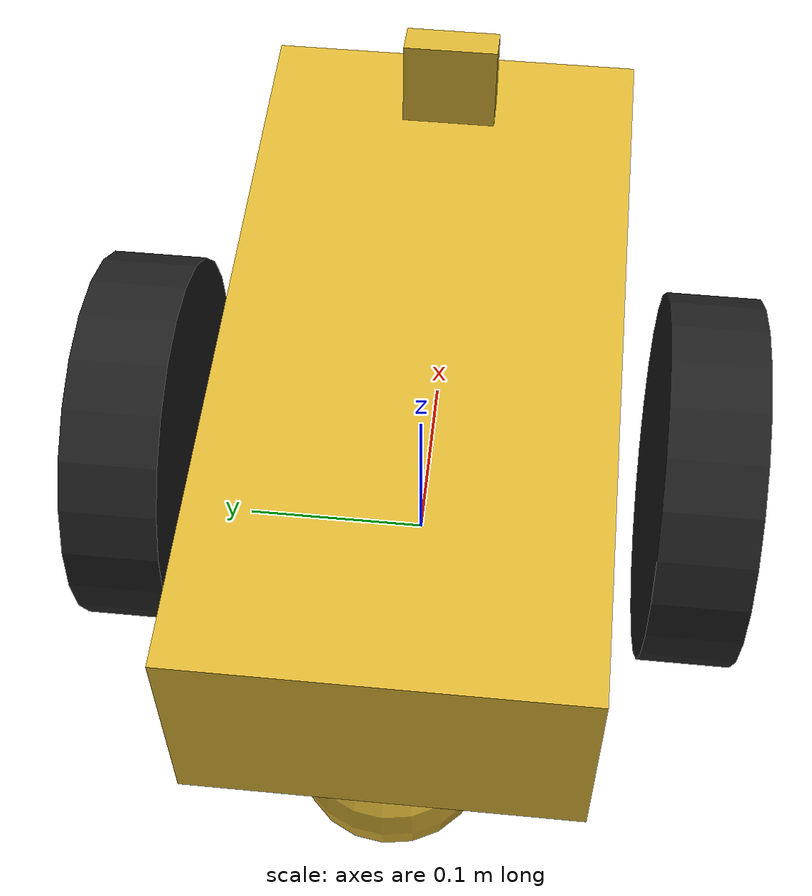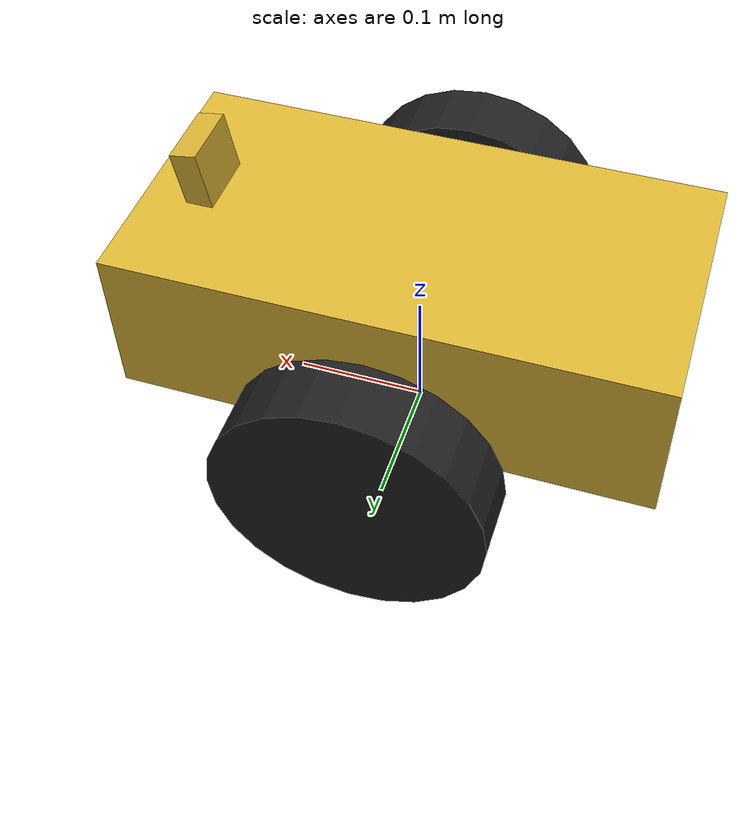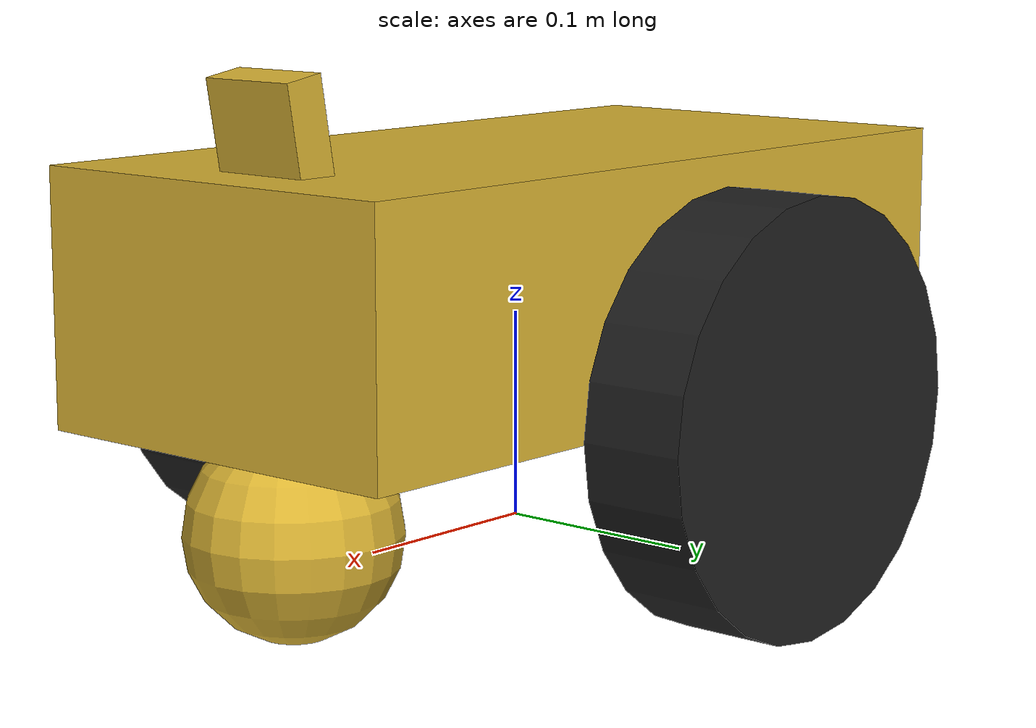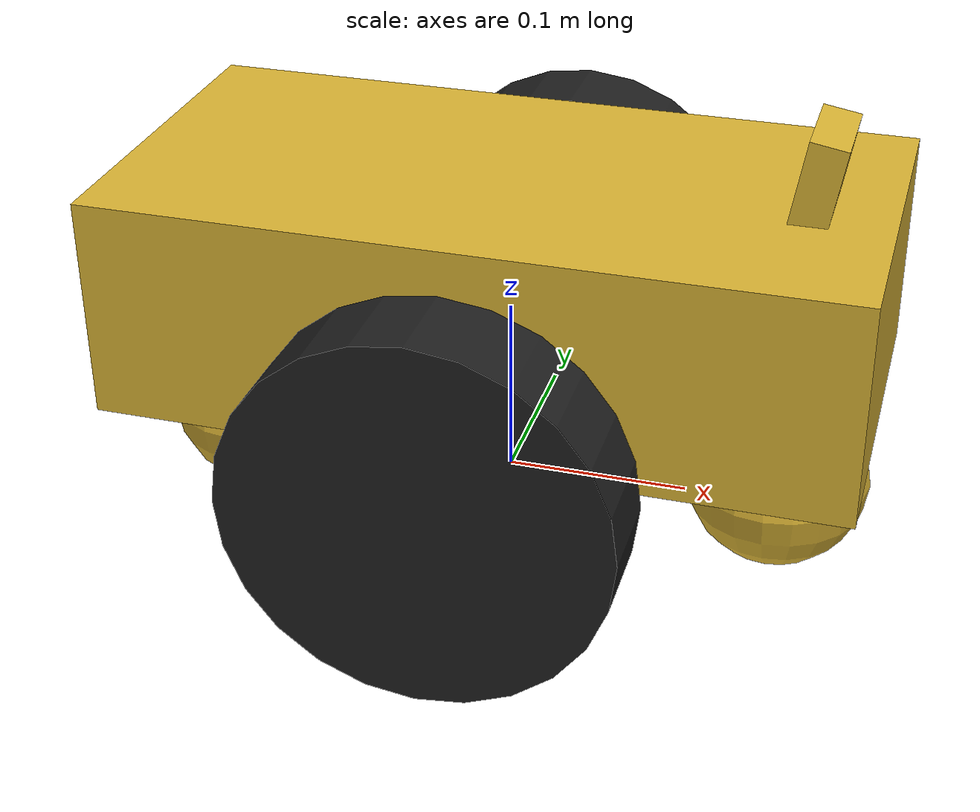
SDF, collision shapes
<?xml version='1.0'?>
<sdf version='1.6'>
  <model name='ugv_bot'>
    <link name='robot_footprint'>
      <pose frame=''>0 0 0 0 -0 0</pose>
      <inertial>
        <pose frame=''>0.00106 0 0.120517 0 -0 0</pose>
        <mass>15.1</mass>
        <inertia>
          <ixx>0.100704</ixx>
          <ixy>0</ixy>
          <ixz>-0.00123974</ixz>
          <iyy>0.103247</iyy>
          <iyz>5.39612e-24</iyz>
          <izz>0.102643</izz>
        </inertia>
      </inertial>
      <velocity_decay/>
      <gravity>1</gravity>
      <velocity_decay/>
      <sensor name='camera' type='camera'>
        <update_rate>30</update_rate>
        <visualize>0</visualize>
        <camera name='head'>
          <horizontal_fov>1.39626</horizontal_fov>
          <image>
            <width>800</width>
            <height>800</height>
            <format>R8G8B8</format>
          </image>
          <clip>
            <near>0.02</near>
            <far>300</far>
          </clip>
        </camera>
        <plugin name='camera_controller' filename='libgazebo_ros_camera.so'>
          <alwaysOn>1</alwaysOn>
          <updateRate>0.0</updateRate>
          <cameraName>camera</cameraName>
          <imageTopicName>/camera/color/image_raw</imageTopicName>
          <cameraInfoTopicName>/camera/color/camera_info</cameraInfoTopicName>
          <frameName>camera_link</frameName>
          <hackBaseline>0.07</hackBaseline>
          <distortionK1>0.0</distortionK1>
          <distortionK2>0.0</distortionK2>
          <distortionK3>0.0</distortionK3>
          <distortionT1>0.0</distortionT1>
          <distortionT2>0.0</distortionT2>
          <robotNamespace>/</robotNamespace>
        </plugin>
        <pose frame=''>0.16 0 0.198 0 -0.17 3.14</pose>
      </sensor>
      <self_collide>0</self_collide>
      <enable_wind>0</enable_wind>
      <kinematic>0</kinematic>
      <visual name='robot_footprint_fixed_joint_lump__chassis_visual_visual'>
        <pose frame=''>0 0 0.12 0 -0 0</pose>
        <geometry>
          <box>
            <size>0.4 0.2 0.12</size>
          </box>
        </geometry>
        <material>
          <script>
            <name>Gazebo/Gold</name>
            <uri>file://media/materials/scripts/gazebo.material</uri>
          </script>
          <shader type='pixel'/>
        </material>
        <transparency>0</transparency>
        <cast_shadows>1</cast_shadows>
      </visual>
      <visual name='robot_footprint_fixed_joint_lump__back_caster_visual_visual_1'>
        <pose frame=''>-0.15 0 0.02 0 -0 0</pose>
        <geometry>
          <sphere>
            <radius>0.05</radius>
          </sphere>
        </geometry>
        <material>
          <shader type='pixel'/>
        </material>
        <transparency>0</transparency>
        <cast_shadows>1</cast_shadows>
      </visual>
      <visual name='robot_footprint_fixed_joint_lump__front_caster_visual_visual_2'>
        <pose frame=''>0.15 0 0.02 0 -0 0</pose>
        <geometry>
          <sphere>
            <radius>0.05</radius>
          </sphere>
        </geometry>
        <material>
          <shader type='pixel'/>
        </material>
        <transparency>0</transparency>
        <cast_shadows>1</cast_shadows>
      </visual>
      <visual name='robot_footprint_fixed_joint_lump__camera_visual_visual_3'>
        <pose frame=''>0.16 0 0.198 0 -0.17 3.14</pose>
        <geometry>
          <mesh>
            <scale>1 1 1</scale>
            <uri>/home/yu/sim_ws/src/E2ES/gazebo/models/ugv_bot/meshes/camera.dae</uri>
          </mesh>
        </geometry>
        <material>
          <script>
            <uri>__default__</uri>
            <name>__default__</name>
          </script>
          <shader type='pixel'/>
        </material>
        <transparency>0</transparency>
        <cast_shadows>1</cast_shadows>
      </visual>
      <collision name='robot_footprint_fixed_joint_lump__collision_collision'>
        <laser_retro>0</laser_retro>
        <max_contacts>10</max_contacts>
        <pose frame=''>0 0 0.12 0 -0 0</pose>
        <geometry>
          <box>
            <size>0.4 0.2 0.12</size>
          </box>
        </geometry>
        <surface>
          <friction>
            <ode>
              <mu>1</mu>
              <mu2>1</mu2>
              <fdir1>0 0 0</fdir1>
              <slip1>0</slip1>
              <slip2>0</slip2>
            </ode>
            <torsional>
              <coefficient>1</coefficient>
              <patch_radius>0</patch_radius>
              <surface_radius>0</surface_radius>
              <use_patch_radius>1</use_patch_radius>
              <ode>
                <slip>0</slip>
              </ode>
            </torsional>
          </friction>
          <bounce>
            <restitution_coefficient>0</restitution_coefficient>
            <threshold>1e+06</threshold>
          </bounce>
          <contact>
            <collide_without_contact>0</collide_without_contact>
            <collide_without_contact_bitmask>1</collide_without_contact_bitmask>
            <collide_bitmask>1</collide_bitmask>
            <ode>
              <soft_cfm>0</soft_cfm>
              <soft_erp>0.2</soft_erp>
              <kp>1e+13</kp>
              <kd>1</kd>
              <max_vel>0.01</max_vel>
              <min_depth>0</min_depth>
            </ode>
            <bullet>
              <split_impulse>1</split_impulse>
              <split_impulse_penetration_threshold>-0.01</split_impulse_penetration_threshold>
              <soft_cfm>0</soft_cfm>
              <soft_erp>0.2</soft_erp>
              <kp>1e+13</kp>
              <kd>1</kd>
            </bullet>
          </contact>
        </surface>
      </collision>
      <collision name='robot_footprint_fixed_joint_lump__back_caster_collision_collision_1'>
        <laser_retro>0</laser_retro>
        <max_contacts>10</max_contacts>
        <pose frame=''>-0.15 0 0.02 0 -0 0</pose>
        <geometry>
          <sphere>
            <radius>0.0499</radius>
          </sphere>
        </geometry>
        <surface>
          <friction>
            <ode>
              <mu>1</mu>
              <mu2>1</mu2>
              <fdir1>0 0 0</fdir1>
              <slip1>0</slip1>
              <slip2>0</slip2>
            </ode>
            <torsional>
              <coefficient>1</coefficient>
              <patch_radius>0</patch_radius>
              <surface_radius>0</surface_radius>
              <use_patch_radius>1</use_patch_radius>
              <ode>
                <slip>0</slip>
              </ode>
            </torsional>
          </friction>
          <bounce>
            <restitution_coefficient>0</restitution_coefficient>
            <threshold>1e+06</threshold>
          </bounce>
          <contact>
            <collide_without_contact>0</collide_without_contact>
            <collide_without_contact_bitmask>1</collide_without_contact_bitmask>
            <collide_bitmask>1</collide_bitmask>
            <ode>
              <soft_cfm>0</soft_cfm>
              <soft_erp>0.2</soft_erp>
              <kp>1e+13</kp>
              <kd>1</kd>
              <max_vel>0.01</max_vel>
              <min_depth>0</min_depth>
            </ode>
            <bullet>
              <split_impulse>1</split_impulse>
              <split_impulse_penetration_threshold>-0.01</split_impulse_penetration_threshold>
              <soft_cfm>0</soft_cfm>
              <soft_erp>0.2</soft_erp>
              <kp>1e+13</kp>
              <kd>1</kd>
            </bullet>
          </contact>
        </surface>
      </collision>
      <collision name='robot_footprint_fixed_joint_lump__front_caster_collision_collision_2'>
        <laser_retro>0</laser_retro>
        <max_contacts>10</max_contacts>
        <pose frame=''>0.15 0 0.02 0 -0 0</pose>
        <geometry>
          <sphere>
            <radius>0.0499</radius>
          </sphere>
        </geometry>
        <surface>
          <friction>
            <ode>
              <mu>1</mu>
              <mu2>1</mu2>
              <fdir1>0 0 0</fdir1>
              <slip1>0</slip1>
              <slip2>0</slip2>
            </ode>
            <torsional>
              <coefficient>1</coefficient>
              <patch_radius>0</patch_radius>
              <surface_radius>0</surface_radius>
              <use_patch_radius>1</use_patch_radius>
              <ode>
                <slip>0</slip>
              </ode>
            </torsional>
          </friction>
          <bounce>
            <restitution_coefficient>0</restitution_coefficient>
            <threshold>1e+06</threshold>
          </bounce>
          <contact>
            <collide_without_contact>0</collide_without_contact>
            <collide_without_contact_bitmask>1</collide_without_contact_bitmask>
            <collide_bitmask>1</collide_bitmask>
            <ode>
              <soft_cfm>0</soft_cfm>
              <soft_erp>0.2</soft_erp>
              <kp>1e+13</kp>
              <kd>1</kd>
              <max_vel>0.01</max_vel>
              <min_depth>0</min_depth>
            </ode>
            <bullet>
              <split_impulse>1</split_impulse>
              <split_impulse_penetration_threshold>-0.01</split_impulse_penetration_threshold>
              <soft_cfm>0</soft_cfm>
              <soft_erp>0.2</soft_erp>
              <kp>1e+13</kp>
              <kd>1</kd>
            </bullet>
          </contact>
        </surface>
      </collision>
      <collision name='robot_footprint_fixed_joint_lump__camera_collision_collision_3'>
        <laser_retro>0</laser_retro>
        <max_contacts>10</max_contacts>
        <pose frame=''>0.16 0 0.198 0 -0.17 3.14</pose>
        <geometry>
          <box>
            <size>0.02 0.05 0.05</size>
          </box>
        </geometry>
        <surface>
          <friction>
            <ode>
              <mu>1</mu>
              <mu2>1</mu2>
              <fdir1>0 0 0</fdir1>
              <slip1>0</slip1>
              <slip2>0</slip2>
            </ode>
            <torsional>
              <coefficient>1</coefficient>
              <patch_radius>0</patch_radius>
              <surface_radius>0</surface_radius>
              <use_patch_radius>1</use_patch_radius>
              <ode>
                <slip>0</slip>
              </ode>
            </torsional>
          </friction>
          <bounce>
            <restitution_coefficient>0</restitution_coefficient>
            <threshold>1e+06</threshold>
          </bounce>
          <contact>
            <collide_without_contact>0</collide_without_contact>
            <collide_without_contact_bitmask>1</collide_without_contact_bitmask>
            <collide_bitmask>1</collide_bitmask>
            <ode>
              <soft_cfm>0</soft_cfm>
              <soft_erp>0.2</soft_erp>
              <kp>1e+13</kp>
              <kd>1</kd>
              <max_vel>0.01</max_vel>
              <min_depth>0</min_depth>
            </ode>
            <bullet>
              <split_impulse>1</split_impulse>
              <split_impulse_penetration_threshold>-0.01</split_impulse_penetration_threshold>
              <soft_cfm>0</soft_cfm>
              <soft_erp>0.2</soft_erp>
              <kp>1e+13</kp>
              <kd>1</kd>
            </bullet>
          </contact>
        </surface>
      </collision>
    </link>
    <link name='left_wheel'>
      <pose frame=''>0 0.15 0.07 0 -0 0</pose>
      <inertial>
        <pose frame=''>0 0 0 -0 1.5707 1.5707</pose>
        <mass>5</mass>
        <inertia>
          <ixx>0.1</ixx>
          <ixy>0</ixy>
          <ixz>0</ixz>
          <iyy>0.1</iyy>
          <iyz>0</iyz>
          <izz>0.1</izz>
        </inertia>
      </inertial>
      <gravity>1</gravity>
      <velocity_decay/>
      <self_collide>0</self_collide>
      <enable_wind>0</enable_wind>
      <kinematic>0</kinematic>
      <visual name='left_wheel_visual_visual'>
        <pose frame=''>0 0 0 -3.13685 1.57079 -1.56615</pose>
        <geometry>
          <cylinder>
            <length>0.05</length>
            <radius>0.1</radius>
          </cylinder>
        </geometry>
        <material>
          <script>
            <name>Gazebo/Black</name>
            <uri>file://media/materials/scripts/gazebo.material</uri>
          </script>
          <shader type='pixel'/>
        </material>
        <transparency>0</transparency>
        <cast_shadows>1</cast_shadows>
      </visual>
      <collision name='left_wheel_collision_collision'>
        <laser_retro>0</laser_retro>
        <max_contacts>10</max_contacts>
        <pose frame=''>0 0 0 3.14159 1.57079 -1.57089</pose>
        <geometry>
          <cylinder>
            <radius>0.1</radius>
            <length>0.05</length>
          </cylinder>
        </geometry>
        <surface>
          <friction>
            <ode>
              <mu>1</mu>
              <mu2>1</mu2>
              <fdir1>0 0 0</fdir1>
              <slip1>0</slip1>
              <slip2>0</slip2>
            </ode>
            <torsional>
              <coefficient>1</coefficient>
              <patch_radius>0</patch_radius>
              <surface_radius>0</surface_radius>
              <use_patch_radius>1</use_patch_radius>
              <ode>
                <slip>0</slip>
              </ode>
            </torsional>
          </friction>
          <bounce>
            <restitution_coefficient>0</restitution_coefficient>
            <threshold>1e+06</threshold>
          </bounce>
          <contact>
            <collide_without_contact>0</collide_without_contact>
            <collide_without_contact_bitmask>1</collide_without_contact_bitmask>
            <collide_bitmask>1</collide_bitmask>
            <ode>
              <soft_cfm>0</soft_cfm>
              <soft_erp>0.2</soft_erp>
              <kp>1e+13</kp>
              <kd>1</kd>
              <max_vel>0.01</max_vel>
              <min_depth>0</min_depth>
            </ode>
            <bullet>
              <split_impulse>1</split_impulse>
              <split_impulse_penetration_threshold>-0.01</split_impulse_penetration_threshold>
              <soft_cfm>0</soft_cfm>
              <soft_erp>0.2</soft_erp>
              <kp>1e+13</kp>
              <kd>1</kd>
            </bullet>
          </contact>
        </surface>
      </collision>
    </link>
    <link name='right_wheel'>
      <pose frame=''>-0 -0.15 0.07 0 -0 0</pose>
      <inertial>
        <pose frame=''>0 0 0 -0 1.5707 1.5707</pose>
        <mass>5</mass>
        <inertia>
          <ixx>0.1</ixx>
          <ixy>0</ixy>
          <ixz>0</ixz>
          <iyy>0.1</iyy>
          <iyz>0</iyz>
          <izz>0.1</izz>
        </inertia>
      </inertial>
      <gravity>1</gravity>
      <velocity_decay/>
      <self_collide>0</self_collide>
      <enable_wind>0</enable_wind>
      <kinematic>0</kinematic>
      <visual name='right_wheel_visual_visual'>
        <pose frame=''>0 0 0 -3.13685 1.57079 -1.56615</pose>
        <geometry>
          <cylinder>
            <length>0.05</length>
            <radius>0.1</radius>
          </cylinder>
        </geometry>
        <material>
          <script>
            <name>Gazebo/Black</name>
            <uri>file://media/materials/scripts/gazebo.material</uri>
          </script>
          <shader type='pixel'/>
        </material>
        <transparency>0</transparency>
        <cast_shadows>1</cast_shadows>
      </visual>
      <collision name='right_wheel_collision_collision'>
        <laser_retro>0</laser_retro>
        <max_contacts>10</max_contacts>
        <pose frame=''>0 0 0 3.14159 1.57079 -1.57089</pose>
        <geometry>
          <cylinder>
            <radius>0.1</radius>
            <length>0.05</length>
          </cylinder>
        </geometry>
        <surface>
          <friction>
            <ode>
              <mu>1</mu>
              <mu2>1</mu2>
              <fdir1>0 0 0</fdir1>
              <slip1>0</slip1>
              <slip2>0</slip2>
            </ode>
            <torsional>
              <coefficient>1</coefficient>
              <patch_radius>0</patch_radius>
              <surface_radius>0</surface_radius>
              <use_patch_radius>1</use_patch_radius>
              <ode>
                <slip>0</slip>
              </ode>
            </torsional>
          </friction>
          <bounce>
            <restitution_coefficient>0</restitution_coefficient>
            <threshold>1e+06</threshold>
          </bounce>
          <contact>
            <collide_without_contact>0</collide_without_contact>
            <collide_without_contact_bitmask>1</collide_without_contact_bitmask>
            <collide_bitmask>1</collide_bitmask>
            <ode>
              <soft_cfm>0</soft_cfm>
              <soft_erp>0.2</soft_erp>
              <kp>1e+13</kp>
              <kd>1</kd>
              <max_vel>0.01</max_vel>
              <min_depth>0</min_depth>
            </ode>
            <bullet>
              <split_impulse>1</split_impulse>
              <split_impulse_penetration_threshold>-0.01</split_impulse_penetration_threshold>
              <soft_cfm>0</soft_cfm>
              <soft_erp>0.2</soft_erp>
              <kp>1e+13</kp>
              <kd>1</kd>
            </bullet>
          </contact>
        </surface>
      </collision>
    </link>
    <joint name='left_wheel_hinge' type='revolute'>
      <parent>robot_footprint</parent>
      <child>left_wheel</child>
      <pose frame=''>0 0 0 0 -0 0</pose>
      <axis>
        <xyz>0 1 0</xyz>
        <use_parent_model_frame>0</use_parent_model_frame>
        <limit>
          <lower>-1e+16</lower>
          <upper>1e+16</upper>
          <effort>-1</effort>
          <velocity>-1</velocity>
        </limit>
        <dynamics>
          <spring_reference>0</spring_reference>
          <spring_stiffness>0</spring_stiffness>
          <damping>1</damping>
          <friction>1</friction>
        </dynamics>
      </axis>
      <physics>
        <ode>
          <limit>
            <cfm>0</cfm>
            <erp>0.2</erp>
          </limit>
          <suspension>
            <cfm>0</cfm>
            <erp>0.2</erp>
          </suspension>
        </ode>
      </physics>
    </joint>
    <joint name='right_wheel_hinge' type='revolute'>
      <parent>robot_footprint</parent>
      <child>right_wheel</child>
      <pose frame=''>0 0 0 0 -0 0</pose>
      <axis>
        <xyz>0 1 0</xyz>
        <use_parent_model_frame>0</use_parent_model_frame>
        <limit>
          <lower>-1e+16</lower>
          <upper>1e+16</upper>
          <effort>-1</effort>
          <velocity>-1</velocity>
        </limit>
        <dynamics>
          <spring_reference>0</spring_reference>
          <spring_stiffness>0</spring_stiffness>
          <damping>1</damping>
          <friction>1</friction>
        </dynamics>
      </axis>
      <physics>
        <ode>
          <limit>
            <cfm>0</cfm>
            <erp>0.2</erp>
          </limit>
          <suspension>
            <cfm>0</cfm>
            <erp>0.2</erp>
          </suspension>
        </ode>
      </physics>
    </joint>
    <static>0</static>
    <allow_auto_disable>1</allow_auto_disable>
    <plugin name='differential_drive_controller' filename='libgazebo_ros_diff_drive.so'>
      <legacyMode>0</legacyMode>
      <alwaysOn>1</alwaysOn>
      <commandTopic>cmd_vel</commandTopic>
      <odometryTopic>odom</odometryTopic>
      <odometryFrame>odom</odometryFrame>
      <odometrySource>world</odometrySource>
      <robotBaseFrame>robot_footprint</robotBaseFrame>
      <publishOdomTF>1</publishOdomTF>
      <publishWheelTF>0</publishWheelTF>
      <publishTf>1</publishTf>
      <publishWheelJointState>1</publishWheelJointState>
      <updateRate>10</updateRate>
      <leftJoint>left_wheel_hinge</leftJoint>
      <rightJoint>right_wheel_hinge</rightJoint>
      <wheelSeparation>0.4</wheelSeparation>
      <wheelDiameter>0.2</wheelDiameter>
      <wheelAcceleration>1</wheelAcceleration>
      <wheelTorque>10</wheelTorque>
      <rosDebugLevel>na</rosDebugLevel>
      <robotNamespace>/</robotNamespace>
    </plugin>
  </model>
</sdf>
